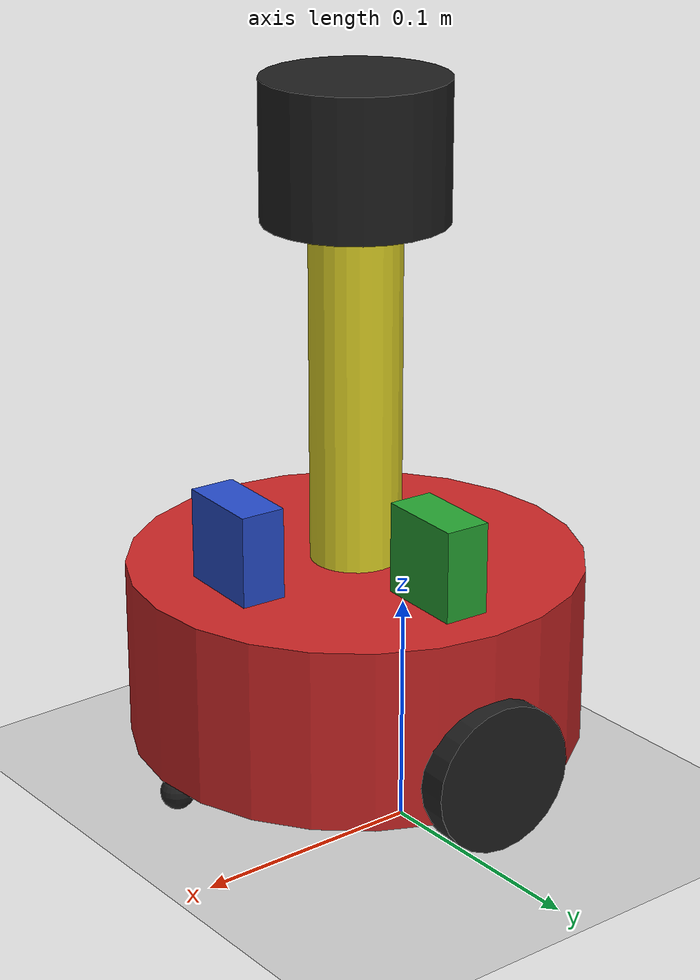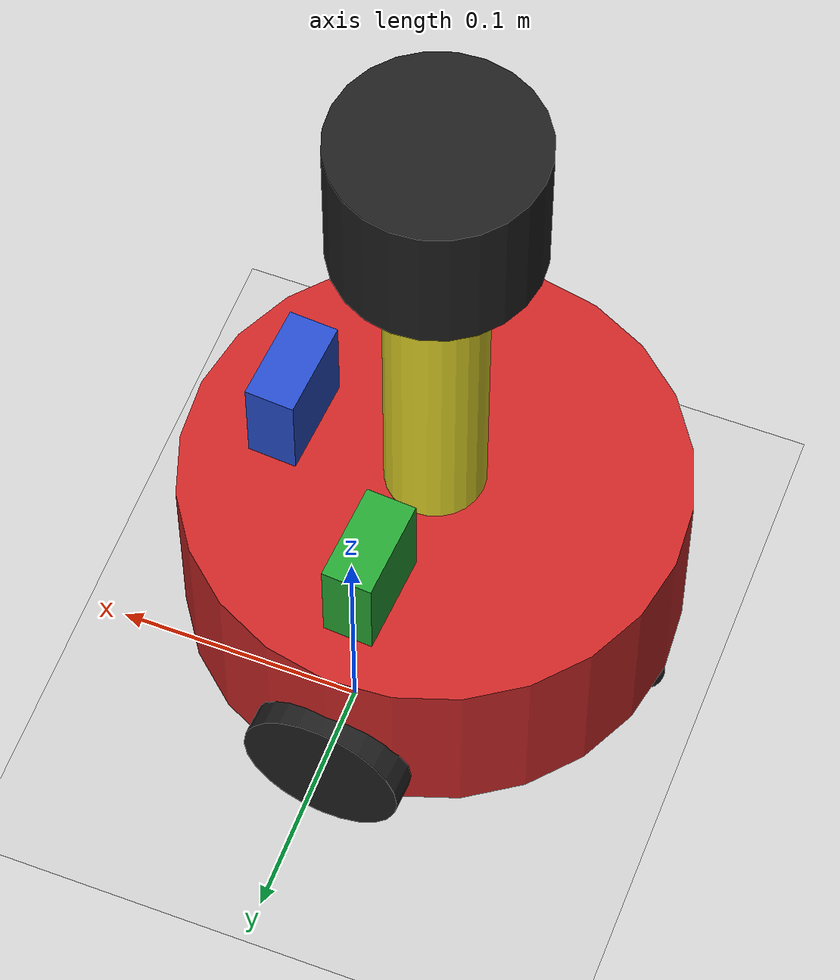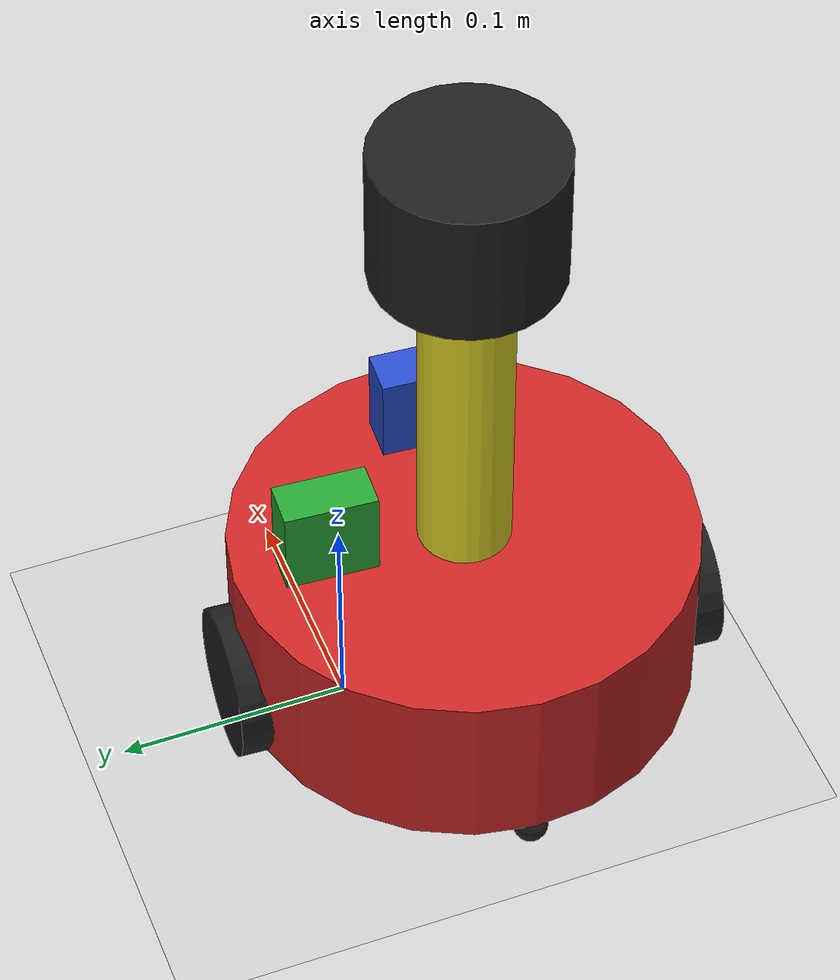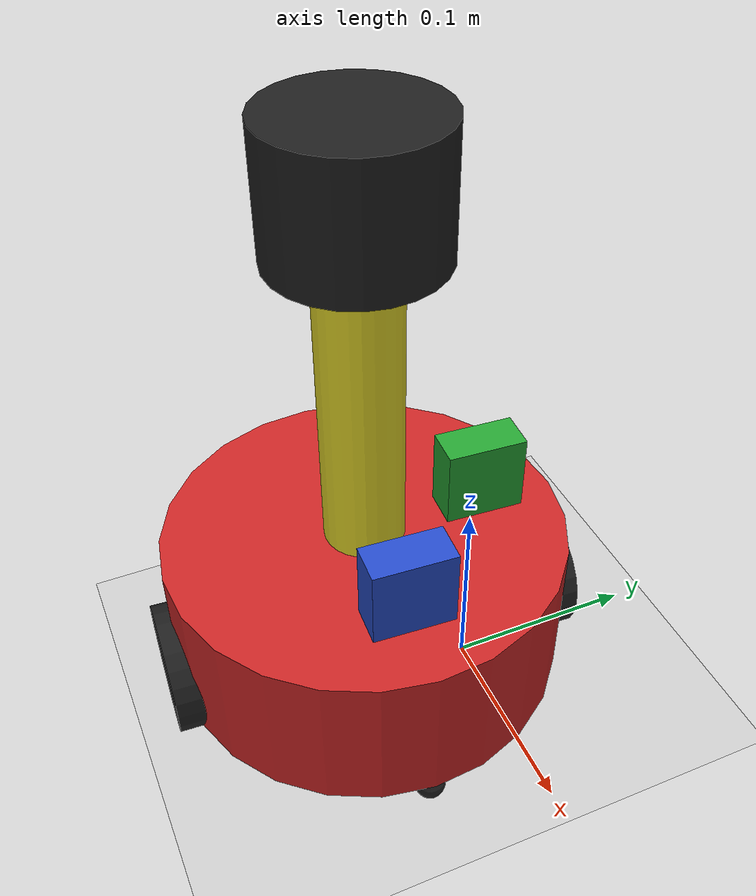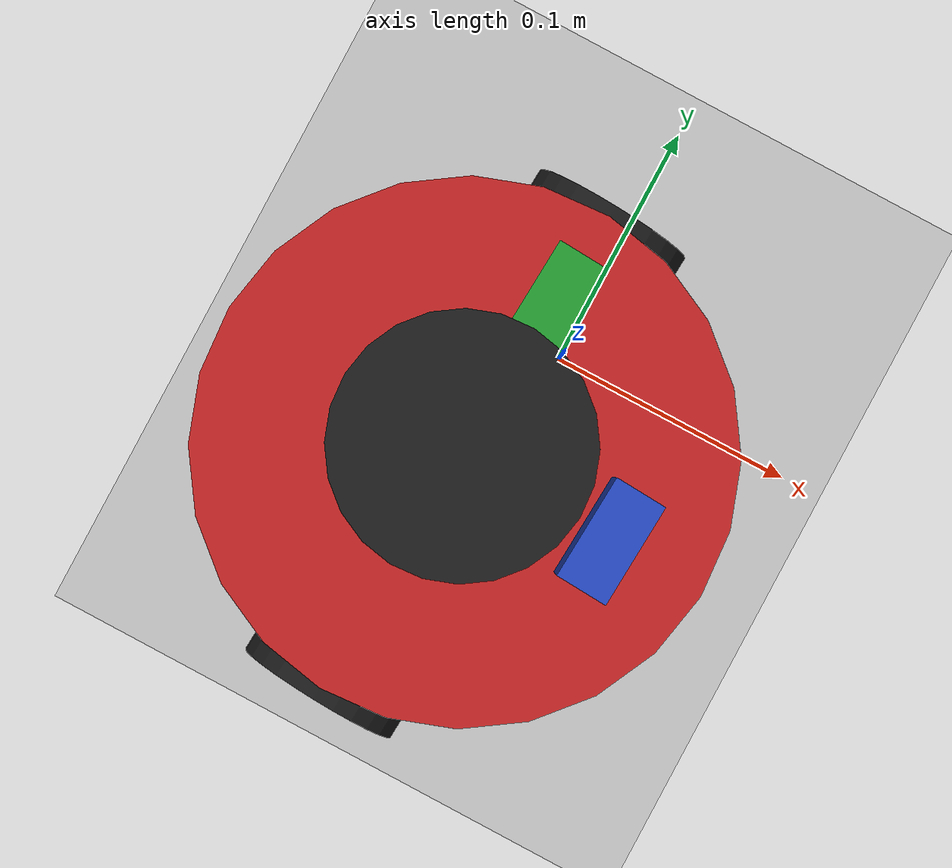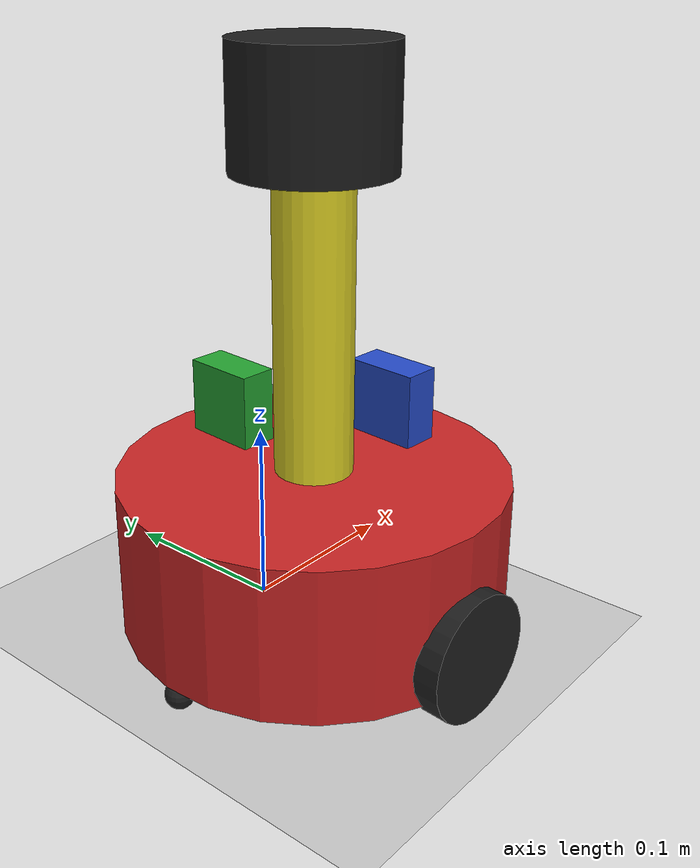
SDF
<sdf version="1.7">
 <world name="default">
  <model name="mycar">
   <link name="base_footprint">
    <inertial>
     <pose>0.001967 0.001967 0.080738 0 -0 0</pose>
     <mass>0.61</mass>
     <inertia>
      <ixx>0.00409189</ixx>
      <ixy>2.36066e-06</ixy>
      <ixz>-4.11148e-05</ixz>
      <iyy>0.00409189</iyy>
      <iyz>-4.11148e-05</iyz>
      <izz>0.00269395</izz>
     </inertia>
    </inertial>
    <collision name="base_footprint_fixed_joint_lump__base_link_collision">
     <pose>0 0 0.055 0 -0 0</pose>
     <geometry><cylinder><length>0.08</length><radius>0.1</radius></cylinder></geometry>
    </collision>
    <collision name="base_footprint_fixed_joint_lump__camera_link_collision_1">
     <pose>0.06 0 0.115 0 -0 0</pose>
     <geometry><box><size>0.02 0.04 0.04</size></box></geometry>
    </collision>
    <collision name="base_footprint_fixed_joint_lump__kinectcamera_link_collision_2">
     <pose>0 0.06 0.115 0 -0 0</pose>
     <geometry><box><size>0.02 0.04 0.04</size></box></geometry>
    </collision>
    <collision name="base_footprint_fixed_joint_lump__support_laser_link_collision_3">
     <pose>0 0 0.17 0 -0 0</pose>
     <geometry><cylinder><length>0.15</length><radius>0.02</radius></cylinder></geometry>
    </collision>
    <collision name="base_footprint_fixed_joint_lump__laser_link_collision_4">
     <pose>0 0 0.275 0 -0 0</pose>
     <geometry><cylinder><length>0.06</length><radius>0.04</radius></cylinder></geometry>
    </collision>
    <visual name="base_footprint_visual"><geometry><sphere><radius>0.001</radius></sphere></geometry></visual>
    <visual name="base_footprint_fixed_joint_lump__base_link_visual_1">
     <pose>0 0 0.055 0 -0 0</pose>
     <geometry><cylinder><length>0.08</length><radius>0.1</radius></cylinder></geometry>
     <material>
      <script><name>Gazebo/Red</name><uri>file://media/materials/scripts/gazebo.material</uri></script>
     </material>
    </visual>
    <visual name="base_footprint_fixed_joint_lump__camera_link_visual_2">
     <pose>0.06 0 0.115 0 -0 0</pose>
     <geometry><box><size>0.02 0.04 0.04</size></box></geometry>
     <material>
      <script><name>Gazebo/Blue</name><uri>file://media/materials/scripts/gazebo.material</uri></script>
     </material>
    </visual>
    <visual name="base_footprint_fixed_joint_lump__kinectcamera_link_visual_3">
     <pose>0 0.06 0.115 0 -0 0</pose>
     <geometry><box><size>0.02 0.04 0.04</size></box></geometry>
     <material>
      <script><name>Gazebo/Green</name><uri>file://media/materials/scripts/gazebo.material</uri></script>
     </material>
    </visual>
    <visual name="base_footprint_fixed_joint_lump__support_laser_link_visual_4">
     <pose>0 0 0.17 0 -0 0</pose>
     <geometry><cylinder><length>0.15</length><radius>0.02</radius></cylinder></geometry>
     <material>
      <script><name>Gazebo/Yellow</name><uri>file://media/materials/scripts/gazebo.material</uri></script>
     </material>
    </visual>
    <visual name="base_footprint_fixed_joint_lump__laser_link_visual_5">
     <pose>0 0 0.275 0 -0 0</pose>
     <geometry><cylinder><length>0.06</length><radius>0.04</radius></cylinder></geometry>
     <material>
      <script><name>Gazebo/Black</name><uri>file://media/materials/scripts/gazebo.material</uri></script>
     </material>
    </visual>
    <sensor name="camera_node" type="camera">
     <update_rate>30</update_rate>
     <camera name="head">
      <horizontal_fov>1.39626</horizontal_fov>
      <image><width>1280</width><height>720</height><format>R8G8B8</format></image>
      <clip><near>0.02</near><far>300</far></clip>
      <noise><type>gaussian</type><mean>0</mean><stddev>0.007</stddev></noise>
     </camera>
     <plugin name="gazebo_camera" filename="libgazebo_ros_camera.so">
      <alwaysOn>1</alwaysOn>
      <updateRate>0.0</updateRate>
      <cameraName>/camera</cameraName>
      <imageTopicName>image_raw</imageTopicName>
      <cameraInfoTopicName>camera_info</cameraInfoTopicName>
      <frameName>camera_link</frameName>
      <hackBaseline>0.07</hackBaseline>
      <distortionK1>0.0</distortionK1>
      <distortionK2>0.0</distortionK2>
      <distortionK3>0.0</distortionK3>
      <distortionT1>0.0</distortionT1>
      <distortionT2>0.0</distortionT2>
      <robotNamespace>/</robotNamespace>
     </plugin>
     <pose>0.06 0 0.115 0 -0 0</pose>
    </sensor>
    <sensor name="camera" type="depth">
     <always_on>1</always_on>
     <update_rate>20</update_rate>
     <camera>
      <horizontal_fov>1.0472</horizontal_fov>
      <image><format>R8G8B8</format><width>640</width><height>480</height></image>
      <clip><near>0.05</near><far>8</far></clip>
     </camera>
     <plugin name="kinect_camera_controller" filename="libgazebo_ros_openni_kinect.so">
      <cameraName>camera</cameraName>
      <alwaysOn>1</alwaysOn>
      <updateRate>10</updateRate>
      <imageTopicName>rgb/image_raw</imageTopicName>
      <depthImageTopicName>depth/image_raw</depthImageTopicName>
      <pointCloudTopicName>depth/points</pointCloudTopicName>
      <cameraInfoTopicName>rgb/camera_info</cameraInfoTopicName>
      <depthImageCameraInfoTopicName>depth/camera_info</depthImageCameraInfoTopicName>
      <frameName>kinectcamera_depth</frameName>
      <baseline>0.1</baseline>
      <distortion_k1>0.0</distortion_k1>
      <distortion_k2>0.0</distortion_k2>
      <distortion_k3>0.0</distortion_k3>
      <distortion_t1>0.0</distortion_t1>
      <distortion_t2>0.0</distortion_t2>
      <pointCloudCutoff>0.4</pointCloudCutoff>
      <robotNamespace>/</robotNamespace>
     </plugin>
     <pose>0 0.06 0.115 0 -0 0</pose>
    </sensor>
    <sensor name="rplidar" type="ray">
     <visualize>1</visualize>
     <update_rate>5.5</update_rate>
     <ray>
      <scan>
       <horizontal>
        <samples>360</samples>
        <resolution>1</resolution>
        <min_angle>-3</min_angle>
        <max_angle>3</max_angle>
       </horizontal>
       <vertical><samples>1</samples><min_angle>0</min_angle><max_angle>0</max_angle></vertical>
      </scan>
      <range><min>0.1</min><max>30</max><resolution>0.01</resolution></range>
      <noise><type>gaussian</type><mean>0</mean><stddev>0.01</stddev></noise>
     </ray>
     <plugin name="gazebo_rplidar" filename="libgazebo_ros_laser.so">
      <topicName>/scan</topicName>
      <frameName>laser_link</frameName>
      <robotNamespace>/</robotNamespace>
     </plugin>
     <pose>0 0 0.275 0 -0 0</pose>
    </sensor>
   </link>
   <joint name="backwheel2baselink" type="revolute">
    <pose relative_to="base_footprint">-0.0925 0 0.0075 0 -0 0</pose>
    <parent>base_footprint</parent>
    <child>back_wheel</child>
    <axis>
     <xyz>1 1 1</xyz>
     <limit><lower>-1e+16</lower><upper>1e+16</upper></limit>
     <dynamics><spring_reference>0</spring_reference><spring_stiffness>0</spring_stiffness></dynamics>
    </axis>
   </joint>
   <link name="back_wheel">
    <pose relative_to="backwheel2baselink">0 0 0 0 -0 0</pose>
    <inertial>
     <mass>0.03</mass>
     <inertia>
      <ixx>6.75e-07</ixx>
      <ixy>0</ixy>
      <ixz>0</ixz>
      <iyy>6.75e-07</iyy>
      <iyz>0</iyz>
      <izz>6.75e-07</izz>
     </inertia>
    </inertial>
    <collision name="back_wheel_collision">
     <geometry><sphere><radius>0.0075</radius></sphere></geometry>
    </collision>
    <visual name="back_wheel_visual">
     <geometry><sphere><radius>0.0075</radius></sphere></geometry>
     <material>
      <script><name>Gazebo/Black</name><uri>file://media/materials/scripts/gazebo.material</uri></script>
     </material>
    </visual>
   </link>
   <joint name="frontwheel2baselink" type="revolute">
    <pose relative_to="base_footprint">0.0925 0 0.0075 0 -0 0</pose>
    <parent>base_footprint</parent>
    <child>front_wheel</child>
    <axis>
     <xyz>1 1 1</xyz>
     <limit><lower>-1e+16</lower><upper>1e+16</upper></limit>
     <dynamics><spring_reference>0</spring_reference><spring_stiffness>0</spring_stiffness></dynamics>
    </axis>
   </joint>
   <link name="front_wheel">
    <pose relative_to="frontwheel2baselink">0 0 0 0 -0 0</pose>
    <inertial>
     <mass>0.03</mass>
     <inertia>
      <ixx>6.75e-07</ixx>
      <ixy>0</ixy>
      <ixz>0</ixz>
      <iyy>6.75e-07</iyy>
      <iyz>0</iyz>
      <izz>6.75e-07</izz>
     </inertia>
    </inertial>
    <collision name="front_wheel_collision">
     <geometry><sphere><radius>0.0075</radius></sphere></geometry>
    </collision>
    <visual name="front_wheel_visual">
     <geometry><sphere><radius>0.0075</radius></sphere></geometry>
     <material>
      <script><name>Gazebo/Black</name><uri>file://media/materials/scripts/gazebo.material</uri></script>
     </material>
    </visual>
   </link>
   <joint name="leftwheel2baselink" type="revolute">
    <pose relative_to="base_footprint">0 0.1 0.0325 0 -0 0</pose>
    <parent>base_footprint</parent>
    <child>left_wheel</child>
    <axis>
     <xyz>0 1 0</xyz>
     <limit><lower>-1e+16</lower><upper>1e+16</upper></limit>
     <dynamics><spring_reference>0</spring_reference><spring_stiffness>0</spring_stiffness></dynamics>
    </axis>
   </joint>
   <link name="left_wheel">
    <pose relative_to="leftwheel2baselink">0 0 0 0 -0 0</pose>
    <inertial>
     <mass>0.05</mass>
     <inertia>
      <ixx>1.41406e-05</ixx>
      <ixy>0</ixy>
      <ixz>0</ixz>
      <iyy>1.41406e-05</iyy>
      <iyz>0</iyz>
      <izz>2.64063e-05</izz>
     </inertia>
    </inertial>
    <collision name="left_wheel_collision">
     <pose>0 0 0 1.5708 -0 0</pose>
     <geometry><cylinder><length>0.015</length><radius>0.0325</radius></cylinder></geometry>
    </collision>
    <visual name="left_wheel_visual">
     <pose>0 0 0 1.5708 -0 0</pose>
     <geometry><cylinder><length>0.015</length><radius>0.0325</radius></cylinder></geometry>
     <material>
      <script><name>Gazebo/Black</name><uri>file://media/materials/scripts/gazebo.material</uri></script>
     </material>
    </visual>
   </link>
   <joint name="rightwheel2baselink" type="revolute">
    <pose relative_to="base_footprint">0 -0.1 0.0325 0 -0 0</pose>
    <parent>base_footprint</parent>
    <child>right_wheel</child>
    <axis>
     <xyz>0 1 0</xyz>
     <limit><lower>-1e+16</lower><upper>1e+16</upper></limit>
     <dynamics><spring_reference>0</spring_reference><spring_stiffness>0</spring_stiffness></dynamics>
    </axis>
   </joint>
   <link name="right_wheel">
    <pose relative_to="rightwheel2baselink">0 0 0 0 -0 0</pose>
    <inertial>
     <mass>0.05</mass>
     <inertia>
      <ixx>1.41406e-05</ixx>
      <ixy>0</ixy>
      <ixz>0</ixz>
      <iyy>1.41406e-05</iyy>
      <iyz>0</iyz>
      <izz>2.64063e-05</izz>
     </inertia>
    </inertial>
    <collision name="right_wheel_collision">
     <pose>0 0 0 1.5708 -0 0</pose>
     <geometry><cylinder><length>0.015</length><radius>0.0325</radius></cylinder></geometry>
    </collision>
    <visual name="right_wheel_visual">
     <pose>0 0 0 1.5708 -0 0</pose>
     <geometry><cylinder><length>0.015</length><radius>0.0325</radius></cylinder></geometry>
     <material>
      <script><name>Gazebo/Black</name><uri>file://media/materials/scripts/gazebo.material</uri></script>
     </material>
    </visual>
   </link>
   <static>0</static>
   <plugin name="differential_drive_controller" filename="libgazebo_ros_diff_drive.so">
    <rosDebugLevel>Debug</rosDebugLevel>
    <publishWheelTF>1</publishWheelTF>
    <robotNamespace>/</robotNamespace>
    <publishTf>1</publishTf>
    <publishWheelJointState>1</publishWheelJointState>
    <alwaysOn>1</alwaysOn>
    <updateRate>100.0</updateRate>
    <legacyMode>1</legacyMode>
    <leftJoint>leftwheel2baselink</leftJoint>
    <rightJoint>rightwheel2baselink</rightJoint>
    <wheelSeparation>0.2</wheelSeparation>
    <wheelDiameter>0.065</wheelDiameter>
    <broadcastTF>1</broadcastTF>
    <wheelTorque>30</wheelTorque>
    <wheelAcceleration>1.8</wheelAcceleration>
    <commandTopic>cmd_vel</commandTopic>
    <odometryFrame>odom</odometryFrame>
    <odometryTopic>odom</odometryTopic>
    <robotBaseFrame>base_footprint</robotBaseFrame>
   </plugin>
   <pose>-0.01468 -0.050593 0.005 0 0 -0.059309</pose>
  </model>
  <model name="ground_plane">
   <static>1</static>
   <link name="link">
    <collision name="collision">
     <geometry><plane><normal>0 0 1</normal><size>100 100</size></plane></geometry>
     <surface>
      <contact><collide_bitmask>65535</collide_bitmask></contact>
      <friction><ode><mu>100</mu><mu2>50</mu2></ode></friction>
     </surface>
    </collision>
    <visual name="visual">
     <cast_shadows>0</cast_shadows>
     <geometry><plane><normal>0 0 1</normal><size>100 100</size></plane></geometry>
     <material>
      <script><uri>file://media/materials/scripts/gazebo.material</uri><name>Gazebo/Grey</name></script>
     </material>
    </visual>
   </link>
  </model>
 </world>
</sdf>
